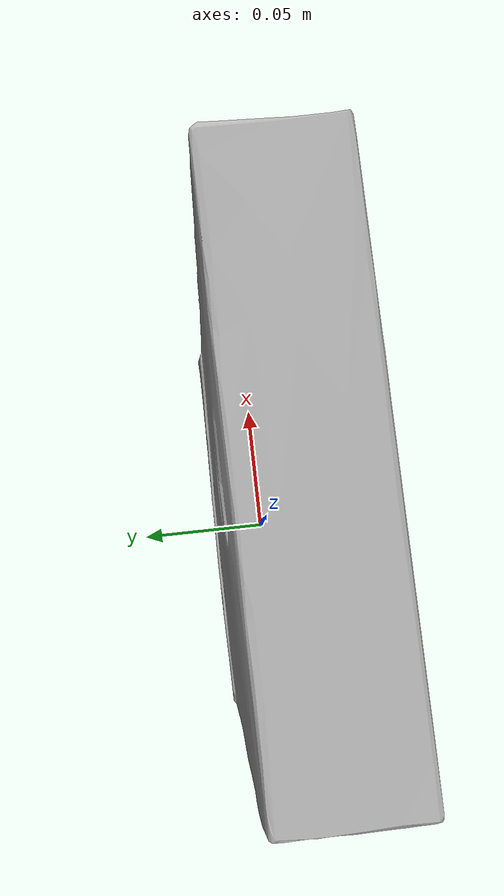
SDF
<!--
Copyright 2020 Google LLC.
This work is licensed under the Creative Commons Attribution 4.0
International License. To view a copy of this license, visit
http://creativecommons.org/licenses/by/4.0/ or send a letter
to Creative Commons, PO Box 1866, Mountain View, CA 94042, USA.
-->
<?xml version="1.0" ?>
<sdf version="1.6">
  <model name="HP_Card_Invitation_Kit">
    <link name="link_0">
      <visual name="visual">
        <geometry>
          <mesh>
            <uri>meshes/model.obj</uri>
          </mesh>
        </geometry>
      </visual>
      <collision name="collision_0">
        <geometry>
          <mesh>
            <uri>meshes/model.obj</uri>
          </mesh>
        </geometry>
      </collision>
    </link>
  </model>
</sdf>
